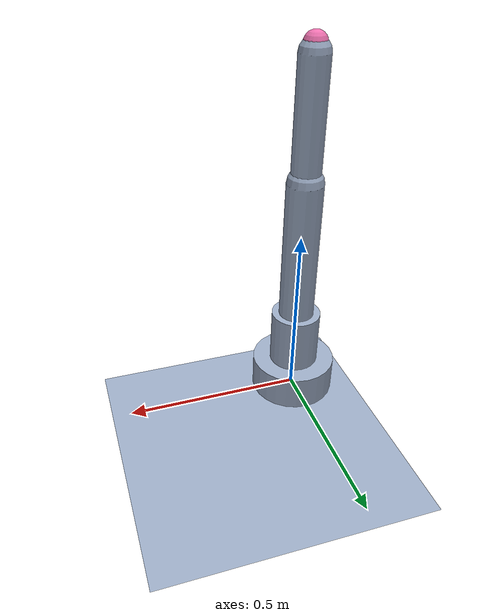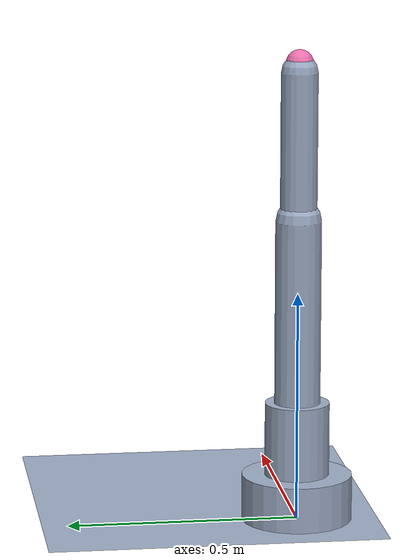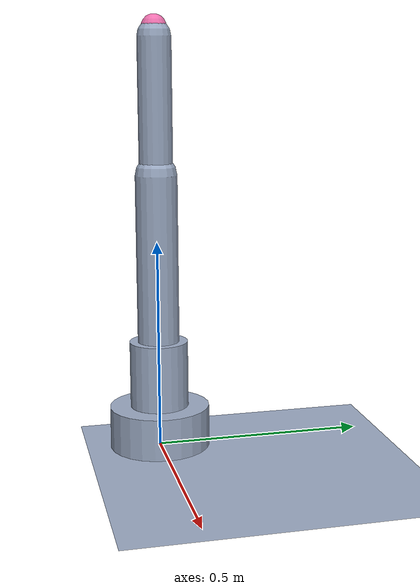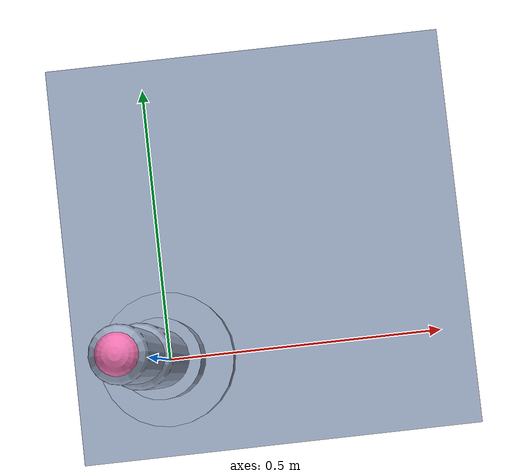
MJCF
<mujoco model="three_axis_arm">
  <compiler angle="radian" autolimits="true" meshdir="assets"/>
  <option gravity="0 0 -9.81" integrator="implicitfast" timestep="0.002"/>

  <default>
    <joint damping="2.0" armature="0.1"/>
    <geom rgba="0.62 0.68 0.78 1" friction="1 0.05 0.001"/>
    <position kp="120" forcerange="-80 80"/>
  </default>

  <asset>

    <texture name="skybox" type="skybox" builtin="gradient"
             rgb1="0.08 0.10 0.14" rgb2="0.02 0.02 0.03" width="512" height="512"/>
    <texture name="grid" type="2d" builtin="checker"
             rgb1="0.12 0.14 0.18" rgb2="0.18 0.20 0.24" width="512" height="512"/>
    <material name="grid" texture="grid" texrepeat="10 10" reflectance="0.15"/>
  </asset>

  <worldbody>
    <light name="top" pos="0 0 3" dir="0 0 -1" diffuse="0.8 0.8 0.8" specular="0.2 0.2 0.2"/>
    <light name="side" pos="2 -2 2" dir="-1 1 -1" diffuse="0.4 0.4 0.4"/>
    <geom name="floor" type="plane" size="4 4 0.1" material="grid"/>
    <camera name="track" pos="1.6 -1.6 1.3" xyaxes="1 1 0 -0.4 0.4 1.2"/>

    <!-- ===================== BASE (fixed to world) ===================== -->
    <body name="base_link" pos="0 0 0">
      <!-- FILL IN LATER: replace with type="mesh" mesh="base_mesh" -->
      <geom name="base_geom" type="cylinder" size="0.12 0.05" pos="0 0 0.05"/>

      <!-- ===================== AXIS 1: base yaw (Z) ===================== -->
      <body name="link1" pos="0 0 0.10">
        <joint name="joint1" type="hinge" axis="0 0 1" range="-3.1416 3.1416"/>
        <inertial pos="0 0 0.08" mass="1.2" diaginertia="0.005 0.005 0.004"/>
        <!-- FILL IN LATER: replace with type="mesh" mesh="link1_mesh" -->
        <geom name="link1_geom" type="cylinder" size="0.07 0.08" pos="0 0 0.08"/>

        <!-- ================== AXIS 2: shoulder pitch (Y) ================== -->
        <body name="link2" pos="0 0 0.16">
          <joint name="joint2" type="hinge" axis="0 1 0" range="-1.5708 1.5708"/>
          <inertial pos="0 0 0.20" mass="0.9" diaginertia="0.02 0.02 0.002"/>
          <!-- FILL IN LATER: replace with type="mesh" mesh="link2_mesh" -->
          <geom name="link2_geom" type="capsule" fromto="0 0 0 0 0 0.40" size="0.05"/>

          <!-- ================== AXIS 3: elbow pitch (Y) =================== -->
          <body name="link3" pos="0 0 0.40">
            <joint name="joint3" type="hinge" axis="0 1 0" range="-2.618 2.618"/>
            <inertial pos="0 0 0.16" mass="0.6" diaginertia="0.01 0.01 0.001"/>
            <!-- FILL IN LATER: replace with type="mesh" mesh="link3_mesh" -->
            <geom name="link3_geom" type="capsule" fromto="0 0 0 0 0 0.32" size="0.04"/>

            <!-- Tool center point (end effector) -->
            <site name="tcp" pos="0 0 0.34" size="0.03" rgba="0.95 0.45 0.70 1"/>
          </body>
        </body>
      </body>
    </body>
  </worldbody>

  <actuator>
    <!-- Position-controlled joints; ctrlrange matches each joint's limits. -->
    <position name="a1" joint="joint1" ctrlrange="-3.1416 3.1416"/>
    <position name="a2" joint="joint2" ctrlrange="-1.5708 1.5708"/>
    <position name="a3" joint="joint3" ctrlrange="-2.618 2.618"/>
  </actuator>

  <sensor>
    <jointpos name="q1" joint="joint1"/>
    <jointpos name="q2" joint="joint2"/>
    <jointpos name="q3" joint="joint3"/>
    <framepos name="tcp_pos" objtype="site" objname="tcp"/>
  </sensor>
</mujoco>
